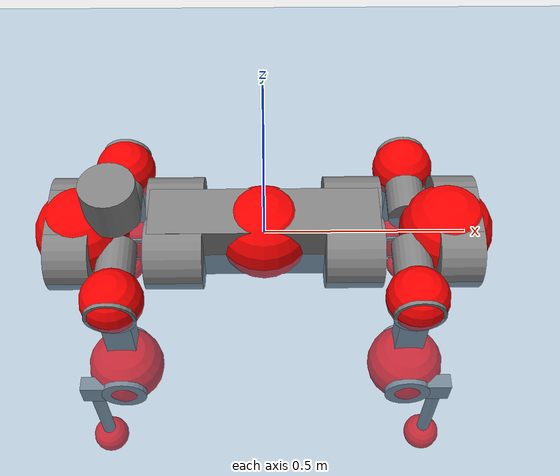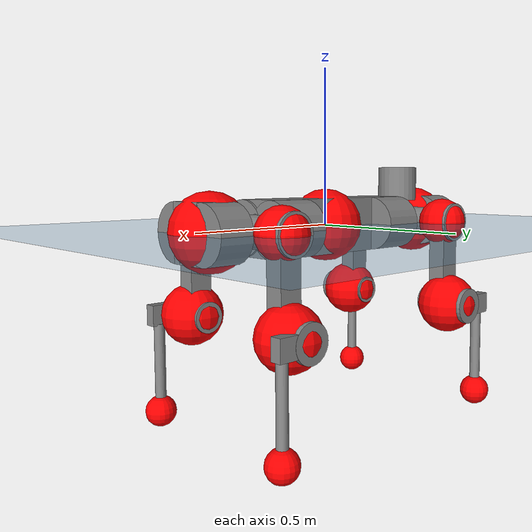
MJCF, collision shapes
<mujoco model="anymal_c">
  <compiler angle="radian" assetdir="assets" balanceinertia="true" inertiafromgeom="false"/>

  <option timestep="0.005" density="1.2" viscosity="2e-05"/>

  <size nkey="1"/>

  <visual>
    <quality shadowsize="8192"/>
    <map shadowclip="0.5"/>
  </visual>

  <default>
    <default class="/">
      <material specular="0" shininess="0.25"/>
      <geom contype="0" conaffinity="0" group="1" solref="-1000 -80"/>
      <site size="0.01 0.005 0.005" group="5"/>
      <general forcelimited="true" forcerange="-80 80" biastype="affine" gainprm="80" biasprm="0 -80 -2"/>
      <default class="anymal_c">
        <joint armature="0.01" damping="0.01" frictionloss="0.1"/>
        <default class="visual">
          <geom type="mesh" group="2"/>
          <default class="visual_zflip"/>
        </default>
        <default class="collision">
          <geom type="cylinder" group="3"/>
          <default class="foot">
            <geom size="0.03 0 0" type="sphere" condim="6" priority="1" friction="0.8 0.02 0.01" solimp="0.015 1 0.03"/>
          </default>
        </default>
      </default>
      <default class="reward_collision_sphere">
        <geom group="5" rgba="1 0 0 1"/>
      </default>
    </default>
  </default>

  <asset>
    <texture type="skybox" colorspace="auto" name="//unnamed_texture_0" builtin="gradient" rgb1="0.95 0.95 0.95" rgb2="0.95 0.95 0.95" width="100" height="600"/>
    <texture type="2d" colorspace="auto" name="texplane" builtin="checker" rgb1="0.345 0.575 0.748" rgb2="0.345 0.575 0.748" markrgb="1 1 1" width="512" height="512"/>
    <texture type="2d" colorspace="linear" name="base" file="base.png"/>
    <texture type="2d" colorspace="linear" name="top_shell" file="top_shell.png"/>
    <texture type="2d" colorspace="linear" name="bottom_shell" file="bottom_shell.png"/>
    <texture type="2d" colorspace="linear" name="remote" file="remote.png"/>
    <texture type="2d" colorspace="linear" name="hatch" file="hatch.png"/>
    <texture type="2d" colorspace="linear" name="handle" file="handle.png"/>
    <texture type="2d" colorspace="linear" name="face" file="face.png"/>
    <texture type="2d" colorspace="linear" name="battery" file="battery.png"/>
    <texture type="2d" colorspace="linear" name="lidar_cage" file="lidar_cage.png"/>
    <texture type="2d" colorspace="linear" name="depth_camera" file="depth_camera.png"/>
    <texture type="2d" colorspace="linear" name="wide_angle_camera" file="wide_angle_camera.png"/>
    <texture type="2d" colorspace="linear" name="lidar" file="lidar.png"/>
    <texture type="2d" colorspace="linear" name="drive" file="drive.png"/>
    <texture type="2d" colorspace="linear" name="hip_l" file="hip_l.png"/>
    <texture type="2d" colorspace="linear" name="shank_l" file="shank_l.png"/>
    <texture type="2d" colorspace="linear" name="foot" file="foot.png"/>
    <texture type="2d" colorspace="linear" name="thigh" file="thigh.png"/>
    <texture type="2d" colorspace="linear" name="shank_r" file="shank_r.png"/>
    <texture type="2d" colorspace="linear" name="hip_r" file="hip_r.png"/>
    <material name="MatPlane" class="/" texture="texplane" texuniform="true" texrepeat="2 2" specular="0.9" shininess="0.5"/>
    <material name="black_plastic" class="/" rgba="0.007 0.007 0.007 1"/>
    <material name="green" class="/" rgba="0.052 0.178 0.033 1"/>
    <material name="red" class="/" rgba="0.178 0.006 0.005 1"/>
    <material name="yellow" class="/" rgba="0.178 0.119 0.006 1"/>
    <material name="lwl" class="/" rgba="0.8 0.8 0.8 1"/>
    <material name="base" class="/" texture="base"/>
    <material name="top_shell" class="/" texture="top_shell"/>
    <material name="bottom_shell" class="/" texture="bottom_shell"/>
    <material name="hip_l" class="/" texture="hip_l"/>
    <material name="thigh" class="/" texture="thigh"/>
    <material name="shank_l" class="/" texture="shank_l"/>
    <material name="foot" class="/" texture="foot"/>
    <material name="hip_r" class="/" texture="hip_r"/>
    <material name="shank" class="/" texture="shank_r"/>
    <material name="hatch" class="/" texture="hatch"/>
    <material name="remote" class="/" texture="remote"/>
    <material name="handle" class="/" texture="handle"/>
    <material name="face" class="/" texture="face"/>
    <material name="depth_camera" class="/" texture="depth_camera"/>
    <material name="wide_angle_camera" class="/" texture="wide_angle_camera"/>
    <material name="battery" class="/" texture="battery"/>
    <material name="lidar_cage" class="/" texture="lidar_cage"/>
    <material name="lidar" class="/" texture="lidar"/>
    <material name="drive" class="/" texture="drive"/>
    <mesh name="base_0" class="/" file="base_0.obj"/>
    <mesh name="base_1" class="/" file="base_1.obj"/>
    <mesh name="base_2" class="/" file="base_2.obj"/>
    <mesh name="base_3" class="/" file="base_3.obj"/>
    <mesh name="base_4" class="/" file="base_4.obj"/>
    <mesh name="base_5" class="/" file="base_5.obj"/>
    <mesh name="top_shell" class="/" file="top_shell.obj"/>
    <mesh name="bottom_shell" class="/" file="bottom_shell.obj"/>
    <mesh name="remote" class="/" file="remote.obj"/>
    <mesh name="handle" class="/" file="handle.obj"/>
    <mesh name="face" class="/" file="face.obj"/>
    <mesh name="wide_angle_camera" class="/" file="wide_angle_camera.obj"/>
    <mesh name="depth_camera" class="/" file="depth_camera.obj"/>
    <mesh name="battery" class="/" file="battery.obj"/>
    <mesh name="lidar_cage" class="/" file="lidar_cage.obj"/>
    <mesh name="lidar" class="/" file="lidar.obj"/>
    <mesh name="drive" class="/" file="drive.obj"/>
    <mesh name="hip_l" class="/" file="hip_l.obj"/>
    <mesh name="thigh" class="/" file="thigh.obj"/>
    <mesh name="shank_l" class="/" file="shank_l.obj"/>
    <mesh name="foot" class="/" file="foot.obj"/>
    <mesh name="hip_r" class="/" file="hip_r.obj"/>
    <mesh name="hatch" class="/" file="hatch.obj"/>
    <mesh name="shank_r" class="/" file="shank_r.obj"/>
  </asset>

  <worldbody>
    <geom name="floor" class="/" size="100 100 0.125" type="plane" group="0" material="MatPlane"/>
    <light name="toplight_shadow" class="/" pos="0 0 5" dir="0.0990148 0.0990148 -0.990148" type="directional" ambient="0.04 0.04 0.04" diffuse="0.55 0.55 0.55" specular="0.12 0.12 0.12"/>
    <light name="toplight_fill" class="/" pos="0 0 5" dir="0.0990148 0.0990148 -0.990148" type="directional" castshadow="false" ambient="0.04 0.04 0.04" diffuse="0.3 0.3 0.3" specular="0.08 0.08 0.08"/>
    <body name="trunk" childclass="anymal_c" pos="-9.41017e-05 -4.99401e-05 0.000374651" quat="1 4.97744e-05 -6.24425e-05 0.000140189">
      <inertial pos="0.00221396 0.00107568 0.0473092" quat="0.500071 0.499851 0.500087 0.499991" mass="17.6169" diaginertia="0.668161 0.42575 0.19126"/>
      <joint name="//unnamed_joint_0" type="free" armature="0" damping="0" frictionloss="0"/>
      <geom name="//unnamed_geom_1" class="visual" material="green" mesh="base_0"/>
      <geom name="//unnamed_geom_2" class="visual" material="yellow" mesh="base_1"/>
      <geom name="//unnamed_geom_3" class="visual" material="red" mesh="base_2"/>
      <geom name="//unnamed_geom_4" class="visual" material="black_plastic" mesh="base_3"/>
      <geom name="//unnamed_geom_5" class="visual" material="lwl" mesh="base_4"/>
      <geom name="//unnamed_geom_6" class="visual" material="base" mesh="base_5"/>
      <geom name="trunk_1" class="collision" size="0.280536 0.0677155 0.0870628" type="box"/>
      <geom name="trunk_2" class="collision" size="0.0870628 0.0701339" pos="0.21867 0.0647136 0" quat="0.707107 0 0.707107 0"/>
      <geom name="trunk_3" class="collision" size="0.0870628 0.0701339" pos="-0.21867 0.0647136 0" quat="0.707107 0 0.707107 0"/>
      <geom name="trunk_4" class="collision" size="0.0870628 0.0701339" pos="0.21867 -0.0647136 0" quat="0.707107 0 0.707107 0"/>
      <geom name="trunk_5" class="collision" size="0.0870628 0.0701339" pos="-0.21867 -0.0647136 0" quat="0.707107 0 0.707107 0"/>
      <geom name="//unnamed_geom_12" class="visual" material="top_shell" mesh="top_shell"/>
      <geom name="//unnamed_geom_13" class="visual" material="bottom_shell" mesh="bottom_shell"/>
      <geom name="//unnamed_geom_14" class="visual" material="remote" mesh="remote"/>
      <geom name="//unnamed_geom_15" class="visual" material="handle" mesh="handle"/>
      <geom name="//unnamed_geom_16" class="visual" pos="0.416729 0 0" quat="1 0 0 0" material="face" mesh="face"/>
      <geom name="trunk_6" class="collision" size="0.053205 0.0677155 0.0870628" pos="0.472025 0 0" type="box"/>
      <geom name="//unnamed_geom_18" class="collision" size="0.0870628 0.053205" pos="0.472025 0.0647136 0" quat="0.707107 0 0.707107 0"/>
      <geom name="//unnamed_geom_19" class="collision" size="0.0870628 0.053205" pos="0.472025 -0.0647136 0" quat="0.707107 0 0.707107 0"/>
      <geom name="//unnamed_geom_20" class="visual" pos="0.464131 0 -0.0281374" quat="0.965926 0 0.258819 0" material="depth_camera" mesh="depth_camera"/>
      <geom name="//unnamed_geom_21" class="visual" pos="0.515759 0 0.0145544" material="wide_angle_camera" mesh="wide_angle_camera"/>
      <geom name="//unnamed_geom_22" class="visual_zflip" pos="-0.416729 0 0" quat="0 0 0 1" material="face" mesh="face"/>
      <geom name="trunk_7" class="collision" size="0.053205 0.0677155 0.0870628" pos="-0.472025 0 0" quat="0 0 0 1" type="box"/>
      <geom name="//unnamed_geom_24" class="collision" size="0.0870628 0.053205" pos="-0.472025 -0.0647136 0" quat="0 -0.707107 0 0.707107"/>
      <geom name="//unnamed_geom_25" class="collision" size="0.0870628 0.053205" pos="-0.472025 0.0647136 0" quat="0 -0.707107 0 0.707107"/>
      <geom name="//unnamed_geom_26" class="visual" pos="-0.464131 0 -0.0281374" quat="0 -0.258819 0 0.965926" material="depth_camera" mesh="depth_camera"/>
      <geom name="//unnamed_geom_27" class="visual_zflip" pos="-0.515759 0 0.0145544" quat="0 0 0 1" material="wide_angle_camera" mesh="wide_angle_camera"/>
      <geom name="//unnamed_geom_28" class="visual" material="battery" mesh="battery"/>
      <geom name="//unnamed_geom_29" class="visual" pos="0 0.0696228 0.0284953" quat="0.683013 -0.183013 0.183013 0.683013" material="depth_camera" mesh="depth_camera"/>
      <geom name="//unnamed_geom_30" class="visual" pos="0 -0.0696228 0.0284953" quat="0.683013 0.183013 0.183013 -0.683013" material="depth_camera" mesh="depth_camera"/>
      <geom name="//unnamed_geom_31" class="visual" pos="-0.365957 0 0.0714593" quat="1 0 0 0" material="lidar_cage" mesh="lidar_cage"/>
      <geom name="trunk_8" class="collision" size="0.0677155 0.0580419" pos="-0.365957 0 0.129793"/>
      <geom name="//unnamed_geom_33" class="visual" pos="-0.365957 -3.17825e-05 0.138252" quat="0.707107 0 0 -0.707107" material="lidar" mesh="lidar"/>
      <geom name="//unnamed_geom_34" class="visual" pos="0.301513 0.0961629 -8.23796e-10" quat="0.258819 0.965926 0 0" material="drive" mesh="drive"/>
      <geom name="//unnamed_geom_35" class="visual" pos="0.301513 -0.0961629 8.23796e-10" quat="0.258819 -0.965926 0 0" material="drive" mesh="drive"/>
      <geom name="//unnamed_geom_36" class="visual" pos="-0.301513 0.0961629 8.23796e-10" quat="0 0 0.965926 -0.258819" material="drive" mesh="drive"/>
      <geom name="//unnamed_geom_37" class="visual" pos="-0.301513 -0.0961629 -8.23796e-10" quat="0 0 -0.965926 -0.258819" material="drive" mesh="drive"/>
      <geom name="//unnamed_geom_38" class="visual" pos="0.116624 0 0.0709732" quat="1 0 0 0" material="hatch" mesh="hatch"/>
      <geom name="//unnamed_geom_39" class="reward_collision_sphere" size="0.116084"/>
      <geom name="//unnamed_geom_40" class="reward_collision_sphere" size="0.116084" pos="0.45242 0 0"/>
      <geom name="//unnamed_geom_41" class="reward_collision_sphere" size="0.116084" pos="-0.45242 0 0"/>
      <site name="imu" pos="0.24717 0.012383 0.0413481" size="0.00967364"/>
      <camera name="track" pos="0 -1.84896 0" quat="0.707107 0.707107 0 0" mode="trackcom"/>
      <camera name="ego_camera" pos="0.45242 0 -0.0388894" quat="-0.5 -0.5 0.5 0.5"/>
      <body name="LF_HIP" pos="0.302092 0.0968579 0.000930471" quat="0.258826 0.965924 -0.000127495 -0.000107409">
        <inertial pos="0.0564955 -0.0136093 -0.00694341" quat="-0.129389 0.710725 -0.133483 0.678462" mass="2.52733" diaginertia="0.00603842 0.00337223 0.00283599"/>
        <joint name="LF_HAA" pos="0 0 0" axis="0.999997 -0.00225891 0.000402821" range="-0.701352 0.487072" armature="0.00930175" damping="0.00518938" frictionloss="0.0949712"/>
        <geom name="//unnamed_geom_42" class="visual" pos="0 -4.84602e-05 7.95955e-06" quat="0.258819 -0.965926 0 0" material="hip_l" mesh="hip_l"/>
        <geom name="//unnamed_geom_43" class="visual" pos="0.0602221 -0.0719237 -0.0418784" quat="0.183013 -0.683013 0.683013 0.183013" material="drive" mesh="drive"/>
        <geom name="//unnamed_geom_44" class="collision" size="0.0483682 0.0677155" pos="0.0602221 -0.0110566 -0.00671329" quat="-0.353553 -0.612372 0.612372 -0.353553"/>
        <body name="LF_THIGH" pos="0.0604424 -0.0670247 -0.0414687" quat="0.183072 -0.682991 0.683015 0.183026">
          <inertial pos="0.0314315 -0.000119358 -0.23787" quat="0.993181 -0.00458593 -0.079584 0.0850675" mass="2.7547" diaginertia="0.0312029 0.0199963 0.00353195"/>
          <joint name="LF_HFE" pos="0 0 0" axis="0.999998 0.0016254 0.000816549" stiffness="0.0067003" range="-3.13288 3.11992" armature="0.00975701" damping="0.00776224" frictionloss="0.0982395"/>
          <geom name="//unnamed_geom_45" class="visual" pos="0.00160955 2.53627e-06 0" quat="0.707107 0 0 -0.707107" material="thigh" mesh="thigh"/>
          <geom name="//unnamed_geom_46" class="collision" size="0.0628787 0.0386946" pos="0.0402151 0 0" quat="0.5 0.5 -0.5 -0.5"/>
          <geom name="//unnamed_geom_47" class="collision" size="0.0362762 0.0290209 0.136702" pos="0.0301613 0 -0.137391" quat="0.707107 0 0 -0.707107" type="box"/>
          <geom name="//unnamed_geom_48" class="visual" pos="0.100839 0 -0.277087" quat="1 0 0 0" material="drive" mesh="drive"/>
          <geom name="//unnamed_geom_49" class="collision" size="0.0483682 0.0677155" pos="0.0304629 0 -0.277087" quat="0.707107 0 0.707107 0"/>
          <geom name="//unnamed_geom_50" class="reward_collision_sphere" size="0.0773892" pos="0.0251344 0 0"/>
          <body name="LF_SHANK" pos="0.101187 -0.000963288 -0.277667" quat="1 -0.00031811 0.000474546 0.000145786">
            <inertial pos="0.00552822 -0.0566318 -0.0783854" quat="0.992981 -0.115524 -0.00128796 -0.0253157" mass="0.538505" diaginertia="0.0104542 0.00617789 0.000974217"/>
            <joint name="LF_KFE" pos="0 0 0" axis="0.99999 -0.000662033 -0.00446205" range="-3.13089 3.12958" armature="0.00998621" damping="0.0100872" frictionloss="0.0984653"/>
            <geom name="//unnamed_geom_51" class="visual" pos="0.000524838 0.00279846 0" quat="0.707107 0 0 -0.707107" material="shank_l" mesh="shank_l"/>
            <geom name="LF_kfe_act" class="collision" size="0.0580419 0.0193473" pos="0.0201076 0 0" quat="0.5 0.5 -0.5 -0.5"/>
            <geom name="//unnamed_geom_53" class="collision" size="0.0556225 0.0326486 0.0183799" pos="0.0201076 -0.0531567 0" quat="0.5 0.5 -0.5 -0.5" type="box"/>
            <geom name="//unnamed_geom_54" class="visual" pos="0.0131201 -0.0804062 -0.328587" quat="0.382683 0 0 -0.92388" material="foot" mesh="foot"/>
            <geom name="LF_calf" class="collision" size="0.0169289 0.136642" pos="0.0131202 -0.081308 -0.164293" quat="0.707107 0 0 -0.707107"/>
            <geom name="LF_foot" class="foot" size="0.0305164" pos="0.0131202 -0.081308 -0.306711" quat="0.707107 0 0 -0.707107"/>
            <geom name="//unnamed_geom_57" class="reward_collision_sphere" size="0.0967364" pos="-0.0502689 0 0"/>
            <geom name="//unnamed_geom_58" class="reward_collision_sphere" size="0.0483682" pos="0.0131202 -0.081308 -0.306711"/>
            <site name="LF_foot" class="foot" pos="0.0131202 -0.081308 -0.306711" quat="0.707107 0 0 -0.707107" size="0.00967364"/>
          </body>
        </body>
      </body>
      <body name="RF_HIP" pos="0.301317 -0.095992 0.000236543" quat="0.258848 -0.965918 8.16207e-06 7.146e-06">
        <inertial pos="0.0568863 0.0150418 -0.00863912" quat="0.134828 0.678788 0.127141 0.710565" mass="2.48118" diaginertia="0.00595811 0.00332863 0.0028596"/>
        <joint name="RF_HAA" pos="0 0 0" axis="0.999999 -0.00106354 -0.00057404" range="-0.493988 0.702519" armature="0.00971499" damping="0.0088388" frictionloss="0.100092"/>
        <geom name="//unnamed_geom_59" class="visual" pos="0 4.84598e-05 7.95952e-06" quat="0.258819 0.965926 0 0" material="hip_r" mesh="hip_r"/>
        <geom name="//unnamed_geom_60" class="visual" pos="0.0602221 0.0719237 -0.0418784" quat="0.183013 0.683013 0.683013 -0.183013" material="drive" mesh="drive"/>
        <geom name="//unnamed_geom_61" class="collision" size="0.0483682 0.0677155" pos="0.0602221 0.0110566 -0.00671329" quat="-0.353553 0.612372 0.612372 0.353553"/>
        <body name="RF_THIGH" pos="0.062144 0.0663918 -0.0420444" quat="0.183407 0.682993 0.682957 -0.182897">
          <inertial pos="0.0307351 -0.000566466 -0.238652" quat="0.992685 -0.0056552 -0.0813269 0.0890493" mass="2.8713" diaginertia="0.031302 0.0208342 0.00372822"/>
          <joint name="RF_HFE" pos="0 0 0" axis="0.99998 -0.00621532 -0.00120683" stiffness="0.00535684" range="-3.10878 3.11899" armature="0.00957254" damping="0.00639616" frictionloss="0.0959093"/>
          <geom name="//unnamed_geom_62" class="visual" pos="0.00160955 2.53627e-06 0" quat="0.707107 0 0 -0.707107" material="thigh" mesh="thigh"/>
          <geom name="//unnamed_geom_63" class="collision" size="0.0628787 0.0386946" pos="0.0402151 0 0" quat="0.5 0.5 0.5 0.5"/>
          <geom name="//unnamed_geom_64" class="collision" size="0.0362762 0.0290209 0.136702" pos="0.0301613 0 -0.137391" quat="0.707107 0 0 0.707107" type="box"/>
          <geom name="//unnamed_geom_65" class="visual" pos="0.100839 0 -0.277087" quat="1 0 0 0" material="drive" mesh="drive"/>
          <geom name="//unnamed_geom_66" class="collision" size="0.0483682 0.0677155" pos="0.0304629 0 -0.277087" quat="0.707107 0 0.707107 0"/>
          <geom name="//unnamed_geom_67" class="reward_collision_sphere" size="0.0773892" pos="0.0251344 0 0"/>
          <body name="RF_SHANK" pos="0.101678 0.00015364 -0.277746" quat="1 2.06385e-06 7.03686e-05 -0.000233992">
            <inertial pos="0.00639014 0.0564683 -0.0767081" quat="0.992859 0.116533 -0.00211955 0.0254094" mass="0.521569" diaginertia="0.0103483 0.00627276 0.000977422"/>
            <joint name="RF_KFE" pos="0 0 0" axis="0.999941 0.000917006 -0.0108546" range="-3.14291 3.1291" armature="0.00965661" damping="0.0108273" frictionloss="0.0884736"/>
            <geom name="//unnamed_geom_68" class="visual" pos="0.000524835 -0.00279846 0" quat="0.707107 0 0 0.707107" material="shank" mesh="shank_r"/>
            <geom name="RF_kfe_act" class="collision" size="0.0580419 0.0193473" pos="0.0201076 0 0" quat="0.5 0.5 0.5 0.5"/>
            <geom name="//unnamed_geom_70" class="collision" size="0.0556225 0.0326486 0.0183799" pos="0.0201076 0.0531567 0" quat="0.5 0.5 0.5 0.5" type="box"/>
            <geom name="//unnamed_geom_71" class="visual" pos="0.0131203 0.0804062 -0.328587" quat="0.382683 0 0 0.92388" material="foot" mesh="foot"/>
            <geom name="RF_calf" class="collision" size="0.0169289 0.136642" pos="0.0131202 0.081308 -0.164293" quat="0.707107 0 0 0.707107"/>
            <geom name="RF_foot" class="foot" size="0.0299941" pos="0.0131202 0.081308 -0.306711" quat="0.707107 0 0 0.707107"/>
            <geom name="//unnamed_geom_74" class="reward_collision_sphere" size="0.0967364" pos="-0.0502689 0 0"/>
            <geom name="//unnamed_geom_75" class="reward_collision_sphere" size="0.0483682" pos="0.0131202 0.081308 -0.306711"/>
            <site name="RF_foot" class="foot" pos="0.0131202 0.081308 -0.306711" quat="0.707107 0 0 0.707107" size="0.00967364"/>
          </body>
        </body>
      </body>
      <body name="LH_HIP" pos="-0.301456 0.0966273 0.000346855" quat="1.39854e-05 5.60663e-05 0.965938 -0.258774">
        <inertial pos="0.0580768 0.0134031 -0.00760298" quat="0.137715 0.682744 0.120125 0.707435" mass="2.46066" diaginertia="0.00597655 0.00329631 0.00289191"/>
        <joint name="LH_HAA" pos="0 0 0" axis="0.999995 -0.00093327 0.00317891" range="-0.488747 0.74185" armature="0.0096007" damping="0.012186" frictionloss="0.0921013"/>
        <geom name="//unnamed_geom_76" class="visual" pos="0 4.84598e-05 7.95952e-06" quat="-0.258819 -0.965926 0 0" material="hip_r" mesh="hip_r"/>
        <geom name="//unnamed_geom_77" class="visual" pos="0.0602221 0.0719237 -0.0418784" quat="0.183013 0.683013 0.683013 -0.183013" material="drive" mesh="drive"/>
        <geom name="//unnamed_geom_78" class="collision" size="0.0483682 0.0677155" pos="0.0602221 0.0110566 -0.00671329" quat="-0.353553 0.612372 0.612372 0.353553"/>
        <body name="LH_THIGH" pos="0.0598603 0.06706 -0.0413669" quat="0.183043 0.682794 0.683206 -0.183079">
          <inertial pos="0.031573 0.000298592 -0.238752" quat="0.993011 -0.00839792 -0.0794703 0.0868527" mass="2.80951" diaginertia="0.031299 0.0206904 0.00363829"/>
          <joint name="LH_HFE" pos="0 0 0" axis="0.999999 -0.000816018 0.000691999" range="-3.14197 3.14305" armature="0.00963212" damping="0.00570162" frictionloss="0.0971777"/>
          <geom name="//unnamed_geom_79" class="visual" pos="0.00160955 2.53627e-06 0" quat="0.707107 0 0 -0.707107" material="thigh" mesh="thigh"/>
          <geom name="//unnamed_geom_80" class="collision" size="0.0628787 0.0386946" pos="0.0402151 0 0" quat="0.5 0.5 -0.5 -0.5"/>
          <geom name="//unnamed_geom_81" class="collision" size="0.0362762 0.0290209 0.136702" pos="0.0301613 0 -0.137391" quat="0.707107 0 0 -0.707107" type="box"/>
          <geom name="//unnamed_geom_82" class="visual" pos="0.100839 0 -0.277087" quat="1 0 0 0" material="drive" mesh="drive"/>
          <geom name="//unnamed_geom_83" class="collision" size="0.0483682 0.0677155" pos="0.0304629 0 -0.277087" quat="0.707107 0 0.707107 0"/>
          <geom name="//unnamed_geom_84" class="reward_collision_sphere" size="0.0773892" pos="0.0251344 0 0"/>
          <body name="LH_SHANK" pos="0.101166 -0.000639038 -0.277521" quat="1 1.40142e-05 -4.0254e-05 -1.04278e-05">
            <inertial pos="0.0054815 0.0571519 -0.0778624" quat="0.992925 0.115945 -0.00103986 0.0256029" mass="0.540238" diaginertia="0.010738 0.00645911 0.00101826"/>
            <joint name="LH_KFE" pos="0 0 0" axis="0.999992 0.0039664 0.00084716" range="-3.14066 3.10234" armature="0.0096623" damping="0.00834259" frictionloss="0.0920351"/>
            <geom name="//unnamed_geom_85" class="visual" pos="0.000524835 -0.00279846 0" quat="-0.707107 0 0 -0.707107" material="shank" mesh="shank_r"/>
            <geom name="LH_kfe_act" class="collision" size="0.0580419 0.0193473" pos="0.0201076 0 0" quat="0.5 0.5 -0.5 -0.5"/>
            <geom name="//unnamed_geom_87" class="collision" size="0.0556225 0.0326486 0.0183799" pos="0.0201076 0.0531567 0" quat="0.5 0.5 -0.5 -0.5" type="box"/>
            <geom name="//unnamed_geom_88" class="visual" pos="0.0131203 0.0804062 -0.328587" quat="-0.382683 0 0 -0.92388" material="foot" mesh="foot"/>
            <geom name="LH_calf" class="collision" size="0.0169289 0.136642" pos="0.0131202 0.081308 -0.164293" quat="0.707107 0 0 -0.707107"/>
            <geom name="LH_foot" class="foot" size="0.0289011" pos="0.0131202 0.081308 -0.306711" quat="0.707107 0 0 -0.707107"/>
            <geom name="//unnamed_geom_91" class="reward_collision_sphere" size="0.0967364" pos="-0.0502689 0 0"/>
            <geom name="//unnamed_geom_92" class="reward_collision_sphere" size="0.0483682" pos="0.0131202 0.081308 -0.306711"/>
            <site name="LH_foot" class="foot" pos="0.0131202 0.081308 -0.306711" quat="0.707107 0 0 -0.707107" size="0.00967364"/>
          </body>
        </body>
      </body>
      <body name="RH_HIP" pos="-0.301633 -0.0962698 0.00057796" quat="-4.2539e-05 8.15075e-05 -0.96583 -0.259175">
        <inertial pos="0.0572325 -0.0152163 -0.00730303" quat="-0.125961 0.714562 -0.139112 0.673931" mass="2.54066" diaginertia="0.00600642 0.00338837 0.00287935"/>
        <joint name="RH_HAA" pos="0 0 0" axis="0.999996 0.000609528 0.00279372" stiffness="0.0020664" range="-0.734599 0.491106" armature="0.00932033" damping="0.00845198" frictionloss="0.0931742"/>
        <geom name="//unnamed_geom_93" class="visual" pos="0 -4.84602e-05 7.95955e-06" quat="-0.258819 0.965926 0 0" material="hip_l" mesh="hip_l"/>
        <geom name="//unnamed_geom_94" class="visual" pos="0.0602221 -0.0719237 -0.0418784" quat="-0.183013 0.683013 -0.683013 -0.183013" material="drive" mesh="drive"/>
        <geom name="//unnamed_geom_95" class="collision" size="0.0483682 0.0677155" pos="0.0602221 -0.0110566 -0.00671329" quat="0.353553 0.612372 -0.612372 0.353553"/>
        <body name="RH_THIGH" pos="0.0596493 -0.0668999 -0.0423727" quat="-0.183063 0.682958 -0.683107 -0.182815">
          <inertial pos="0.0311444 0.00170075 -0.239574" quat="0.993179 -0.00490788 -0.0806439 0.0840698" mass="2.72044" diaginertia="0.0304554 0.0198007 0.00354339"/>
          <joint name="RH_HFE" pos="0 0 0" axis="0.999995 -0.00314715 0.000113555" range="-3.15813 3.12444" armature="0.0105738" damping="0.00791446" frictionloss="0.0948692"/>
          <geom name="//unnamed_geom_96" class="visual" pos="0.00160955 2.53627e-06 0" quat="0.707107 0 0 -0.707107" material="thigh" mesh="thigh"/>
          <geom name="//unnamed_geom_97" class="collision" size="0.0628787 0.0386946" pos="0.0402151 0 0" quat="0.5 0.5 0.5 0.5"/>
          <geom name="//unnamed_geom_98" class="collision" size="0.0362762 0.0290209 0.136702" pos="0.0301613 0 -0.137391" quat="0.707107 0 0 0.707107" type="box"/>
          <geom name="//unnamed_geom_99" class="visual" pos="0.100839 0 -0.277087" quat="1 0 0 0" material="drive" mesh="drive"/>
          <geom name="//unnamed_geom_100" class="collision" size="0.0483682 0.0677155" pos="0.0304629 0 -0.277087" quat="0.707107 0 0.707107 0"/>
          <geom name="//unnamed_geom_101" class="reward_collision_sphere" size="0.0773892" pos="0.0251344 0 0"/>
          <body name="RH_SHANK" pos="0.100819 0.000602118 -0.277829" quat="1 1.43332e-05 -4.03942e-05 -1.31949e-05">
            <inertial pos="0.0046198 -0.0566391 -0.078396" quat="0.9931 -0.11564 0.0020154 -0.0193845" mass="0.533095" diaginertia="0.010624 0.00634179 0.00100606"/>
            <joint name="RH_KFE" pos="0 0 0" axis="0.999999 -0.00122383 0.000105575" range="-3.11927 3.14956" armature="0.00978237" damping="0.0078183" frictionloss="0.0992947"/>
            <geom name="//unnamed_geom_102" class="visual" pos="0.000524838 0.00279846 0" quat="0.707107 0 0 -0.707107" material="shank_l" mesh="shank_l"/>
            <geom name="RH_kfe_act" class="collision" size="0.0580419 0.0193473" pos="0.0201076 0 0" quat="0.5 0.5 0.5 0.5"/>
            <geom name="//unnamed_geom_104" class="collision" size="0.0556225 0.0326486 0.0183799" pos="0.0201076 -0.0531567 0" quat="0.5 0.5 0.5 0.5" type="box"/>
            <geom name="//unnamed_geom_105" class="visual" pos="0.0131201 -0.0804062 -0.328587" quat="0.382683 0 0 -0.92388" material="foot" mesh="foot"/>
            <geom name="RH_calf" class="collision" size="0.0169289 0.136642" pos="0.0131202 -0.081308 -0.164293" quat="0.707107 0 0 0.707107"/>
            <geom name="RH_foot" class="foot" size="0.0252702" pos="0.0131202 -0.081308 -0.306711" quat="0.707107 0 0 0.707107"/>
            <geom name="//unnamed_geom_108" class="reward_collision_sphere" size="0.0967364" pos="-0.0502689 0 0"/>
            <geom name="//unnamed_geom_109" class="reward_collision_sphere" size="0.0483682" pos="0.0131202 -0.081308 -0.306711"/>
            <site name="RH_foot" class="foot" pos="0.0131202 -0.081308 -0.306711" quat="0.707107 0 0 0.707107" size="0.00967364"/>
          </body>
        </body>
      </body>
    </body>
  </worldbody>

  <contact>
    <pair class="/" geom1="floor" geom2="LF_foot" name="//unnamed_contact_0"/>
    <pair class="/" geom1="floor" geom2="RF_foot" name="//unnamed_contact_1"/>
    <pair class="/" geom1="floor" geom2="LH_foot" name="//unnamed_contact_2"/>
    <pair class="/" geom1="floor" geom2="RH_foot" name="//unnamed_contact_3"/>
  </contact>

  <actuator>
    <general name="LF_HAA" class="/" joint="LF_HAA" forcerange="-80.9087 80.9087" gainprm="79.7994" biasprm="0 -79.7994 -1.88924"/>
    <general name="LF_HFE" class="/" joint="LF_HFE" forcerange="-72.6767 72.6767" gainprm="79.7994" biasprm="0 -79.7994 -1.88924"/>
    <general name="LF_KFE" class="/" joint="LF_KFE" forcerange="-77.7411 77.7411" gainprm="79.7994" biasprm="0 -79.7994 -1.88924"/>
    <general name="RF_HAA" class="/" joint="RF_HAA" forcerange="-78.2871 78.2871" gainprm="79.7994" biasprm="0 -79.7994 -1.88924"/>
    <general name="RF_HFE" class="/" joint="RF_HFE" forcerange="-76.0025 76.0025" gainprm="79.7994" biasprm="0 -79.7994 -1.88924"/>
    <general name="RF_KFE" class="/" joint="RF_KFE" forcerange="-80.2681 80.2681" gainprm="79.7994" biasprm="0 -79.7994 -1.88924"/>
    <general name="LH_HAA" class="/" joint="LH_HAA" forcerange="-76.2446 76.2446" gainprm="79.7994" biasprm="0 -79.7994 -1.88924"/>
    <general name="LH_HFE" class="/" joint="LH_HFE" forcerange="-77.9905 77.9905" gainprm="79.7994" biasprm="0 -79.7994 -1.88924"/>
    <general name="LH_KFE" class="/" joint="LH_KFE" forcerange="-80.9969 80.9969" gainprm="79.7994" biasprm="0 -79.7994 -1.88924"/>
    <general name="RH_HAA" class="/" joint="RH_HAA" forcerange="-73.3361 73.3361" gainprm="79.7994" biasprm="0 -79.7994 -1.88924"/>
    <general name="RH_HFE" class="/" joint="RH_HFE" forcerange="-76.3042 76.3042" gainprm="79.7994" biasprm="0 -79.7994 -1.88924"/>
    <general name="RH_KFE" class="/" joint="RH_KFE" forcerange="-76.6932 76.6932" gainprm="79.7994" biasprm="0 -79.7994 -1.88924"/>
  </actuator>

  <sensor>
    <gyro site="imu" name="imu_angular_velocity"/>
    <velocimeter site="imu" name="imu_linear_velocity"/>
    <framelinvel objtype="site" objname="LF_foot" name="LF_foot_global_linear_velocity"/>
    <framelinvel objtype="site" objname="RF_foot" name="RF_foot_global_linear_velocity"/>
    <framelinvel objtype="site" objname="LH_foot" name="LH_foot_global_linear_velocity"/>
    <framelinvel objtype="site" objname="RH_foot" name="RH_foot_global_linear_velocity"/>
  </sensor>

  <keyframe>
    <key name="home" qpos="0 0 0.55 1 0 0 0 0 0.4 -0.8 0 -0.4 0.8 0 -0.4 0.8 0 0.4 -0.8"/>
  </keyframe>
</mujoco>
